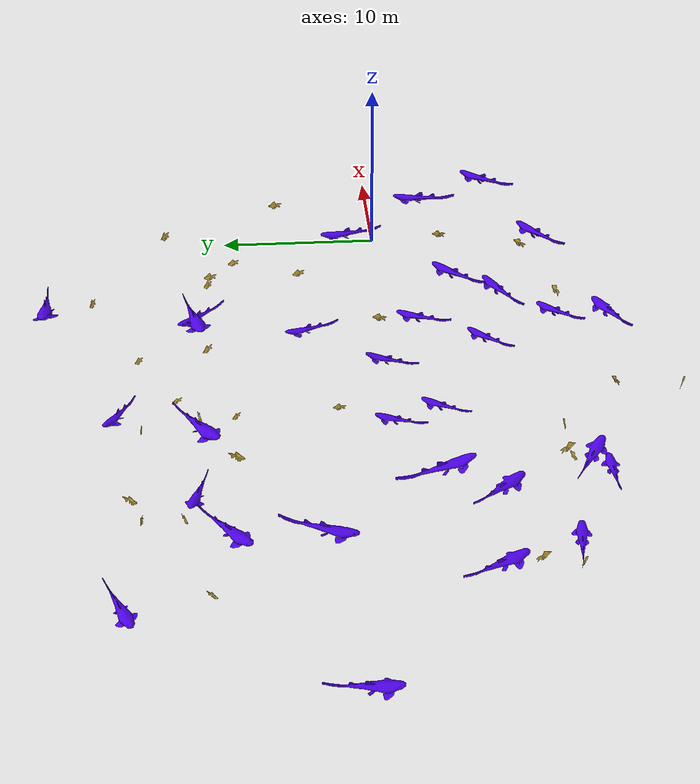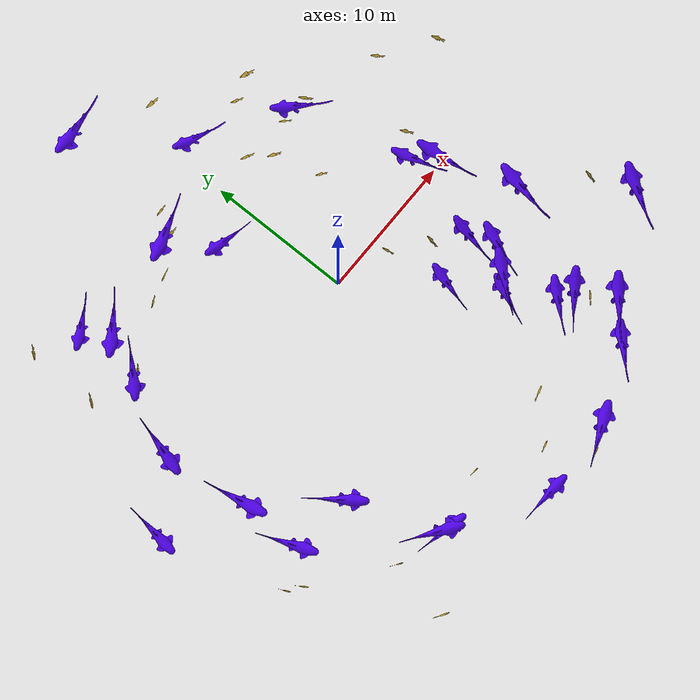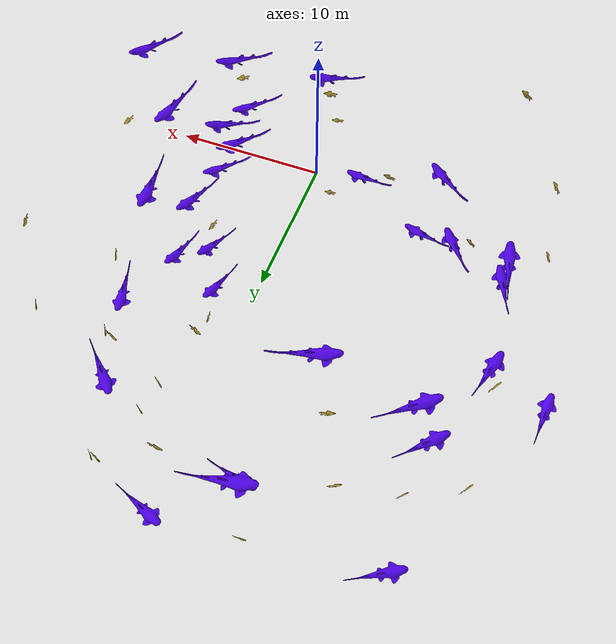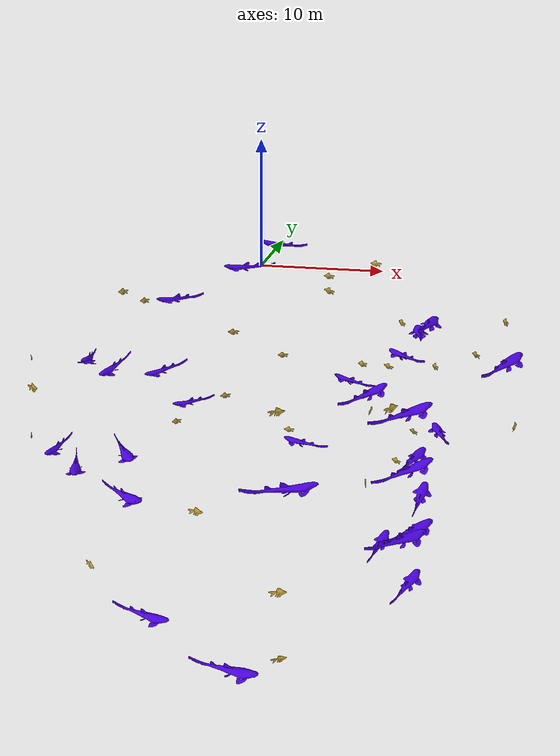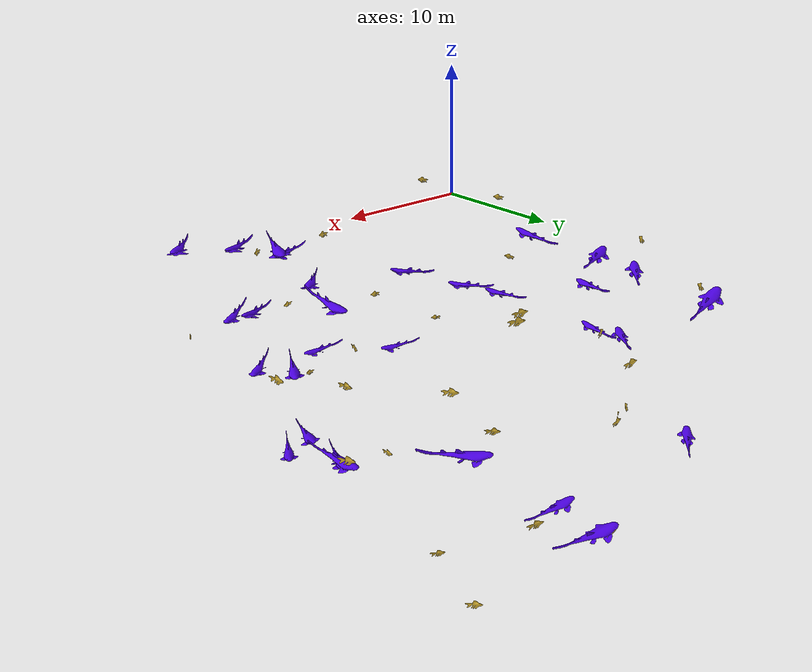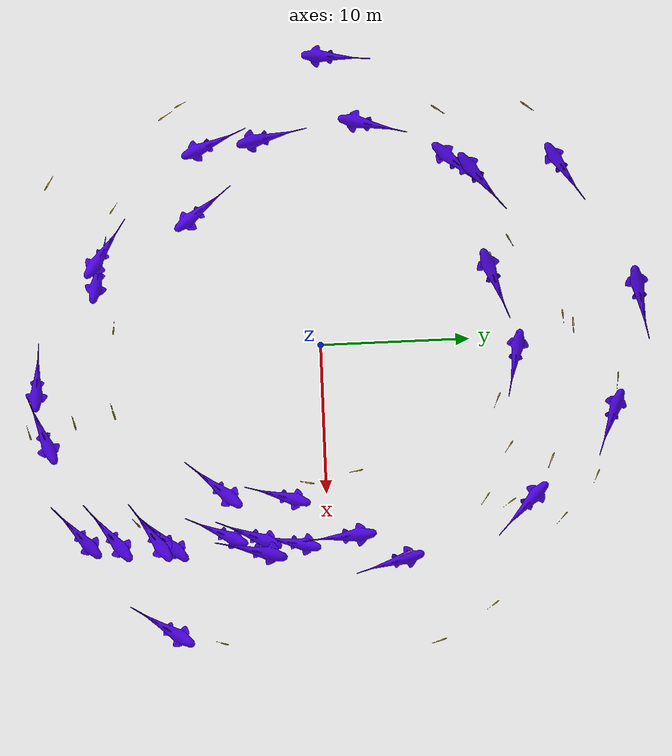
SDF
<sdf version="1.6">
 <world name="aquaculture_world">
  <plugin filename="libusv_gazebo_wind_plugin.so" name="wind">
   <wind_obj>
    <name>wamv</name>
    <link_name>wamv/base_link</link_name>
    <coeff_vector>.5 .5 .33</coeff_vector>
   </wind_obj>
   <wind_direction>270</wind_direction>
   <wind_mean_velocity>0</wind_mean_velocity>
   <var_wind_gain_constants>0</var_wind_gain_constants>
   <var_wind_time_constants>2</var_wind_time_constants>
   <update_rate>10</update_rate>
   <topic_wind_speed>/vrx/debug/wind/speed</topic_wind_speed>
   <topic_wind_direction>/vrx/debug/wind/direction</topic_wind_direction>
  </plugin>
  <plugin name="underwater_current_plugin" filename="libuuv_underwater_current_ros_plugin.so">
   <namespace>hydrodynamics</namespace>
   <constant_current>
    <topic>current_velocity</topic>
    <velocity><mean>0</mean><min>0</min><max>5</max><mu>0.0</mu><noiseAmp>0.0</noiseAmp></velocity>
    <horizontal_angle>
     <mean>0</mean>
     <min>-3.141592653589793238</min>
     <max>3.141592653589793238</max>
     <mu>0.0</mu>
     <noiseAmp>0.0</noiseAmp>
    </horizontal_angle>
    <vertical_angle>
     <mean>0</mean>
     <min>-3.141592653589793238</min>
     <max>3.141592653589793238</max>
     <mu>0.0</mu>
     <noiseAmp>0.0</noiseAmp>
    </vertical_angle>
   </constant_current>
  </plugin>
  <plugin name="sc_interface" filename="libuuv_sc_ros_interface_plugin.so"/>
  <include>
   <name>goldenfish0</name>
   <uri>model://goldenfish</uri>
   <pose>5.45 -21.32 -16.12 7.69 6.28 0.27</pose>
  </include>
  <include>
   <name>goldenfish1</name>
   <uri>model://goldenfish</uri>
   <pose>18.85 11.34 -10.60 7.74 0.01 2.17</pose>
  </include>
  <include>
   <name>goldenfish2</name>
   <uri>model://goldenfish</uri>
   <pose>8.55 15.37 -3.09 1.63 0.02 2.75</pose>
  </include>
  <include>
   <name>goldenfish3</name>
   <uri>model://goldenfish</uri>
   <pose>11.66 -13.34 -6.02 7.80 6.18 0.72</pose>
  </include>
  <include>
   <name>goldenfish4</name>
   <uri>model://goldenfish</uri>
   <pose>4.35 11.96 -5.19 7.76 6.17 2.73</pose>
  </include>
  <include>
   <name>goldenfish5</name>
   <uri>model://goldenfish</uri>
   <pose>10.32 19.43 -15.51 7.79 6.15 2.72</pose>
  </include>
  <include>
   <name>goldenfish6</name>
   <uri>model://goldenfish</uri>
   <pose>-1.93 -14.79 -14.89 7.78 6.27 6.17</pose>
  </include>
  <include>
   <name>goldenfish7</name>
   <uri>model://goldenfish</uri>
   <pose>-6.96 14.09 -18.23 7.85 0.01 3.64</pose>
  </include>
  <include>
   <name>goldenfish8</name>
   <uri>model://goldenfish</uri>
   <pose>7.87 13.06 -13.01 1.58 0.14 2.52</pose>
  </include>
  <include>
   <name>goldenfish9</name>
   <uri>model://goldenfish</uri>
   <pose>3.30 20.39 -5.91 7.85 6.25 3.03</pose>
  </include>
  <include>
   <name>goldenfish10</name>
   <uri>model://goldenfish</uri>
   <pose>11.98 11.73 -23.07 1.58 6.26 2.52</pose>
  </include>
  <include>
   <name>goldenfish11</name>
   <uri>model://goldenfish</uri>
   <pose>-15.83 8.79 -5.50 1.63 6.18 4.11</pose>
  </include>
  <include>
   <name>goldenfish12</name>
   <uri>model://goldenfish</uri>
   <pose>-10.71 -14.76 -20.79 7.80 0.09 5.65</pose>
  </include>
  <include>
   <name>goldenfish13</name>
   <uri>model://goldenfish</uri>
   <pose>-11.99 11.97 -20.83 1.68 6.21 3.95</pose>
  </include>
  <include>
   <name>goldenfish14</name>
   <uri>model://goldenfish</uri>
   <pose>-5.50 12.29 -10.19 7.73 6.25 3.45</pose>
  </include>
  <include>
   <name>goldenfish15</name>
   <uri>model://goldenfish</uri>
   <pose>-11.86 -18.15 -4.47 1.62 6.17 5.72</pose>
  </include>
  <include>
   <name>goldenfish16</name>
   <uri>model://goldenfish</uri>
   <pose>-16.00 15.10 -8.25 1.63 6.19 4.07</pose>
  </include>
  <include>
   <name>goldenfish17</name>
   <uri>model://goldenfish</uri>
   <pose>4.03 -14.55 -6.44 1.66 6.20 0.27</pose>
  </include>
  <include>
   <name>goldenfish18</name>
   <uri>model://goldenfish</uri>
   <pose>5.08 -18.64 -23.98 1.65 6.10 0.27</pose>
  </include>
  <include>
   <name>goldenfish19</name>
   <uri>model://goldenfish</uri>
   <pose>11.57 12.66 -8.24 7.80 6.22 2.17</pose>
  </include>
  <include>
   <name>goldenfish20</name>
   <uri>model://goldenfish</uri>
   <pose>-1.19 17.42 -14.28 7.79 0.05 3.22</pose>
  </include>
  <include>
   <name>goldenfish21</name>
   <uri>model://goldenfish</uri>
   <pose>20.55 -7.86 -9.11 7.79 0.10 1.25</pose>
  </include>
  <include>
   <name>goldenfish22</name>
   <uri>model://goldenfish</uri>
   <pose>-0.63 18.87 -24.02 1.66 0.01 3.16</pose>
  </include>
  <include>
   <name>goldenfish23</name>
   <uri>model://goldenfish</uri>
   <pose>13.57 17.32 -22.18 7.71 0.01 2.37</pose>
  </include>
  <include>
   <name>goldenfish24</name>
   <uri>model://goldenfish</uri>
   <pose>9.70 -1.43 -11.64 1.66 0.01 1.38</pose>
  </include>
  <include>
   <name>goldenfish25</name>
   <uri>model://goldenfish</uri>
   <pose>9.42 2.15 -20.66 1.60 6.28 1.74</pose>
  </include>
  <include>
   <name>goldenfish26</name>
   <uri>model://goldenfish</uri>
   <pose>20.76 7.29 -5.89 7.85 0.02 1.88</pose>
  </include>
  <include>
   <name>goldenfish27</name>
   <uri>model://goldenfish</uri>
   <pose>-16.21 -10.03 -5.61 7.84 6.24 5.27</pose>
  </include>
  <include>
   <name>goldenfish28</name>
   <uri>model://goldenfish</uri>
   <pose>-17.52 -9.16 -12.91 7.81 6.20 5.17</pose>
  </include>
  <include>
   <name>goldenfish29</name>
   <uri>model://goldenfish</uri>
   <pose>14.93 5.34 -9.85 1.58 0.11 1.99</pose>
  </include>
  <include>
   <name>catfish0</name>
   <uri>model://catfish</uri>
   <pose>11.10 -3.69 -24.24 6.26 6.24 1.29</pose>
  </include>
  <include><name>catfish1</name><uri>model://catfish</uri><pose>9.41 -7.85 -8.19 6.28 6.22 0.87</pose></include>
  <include>
   <name>catfish2</name>
   <uri>model://catfish</uri>
   <pose>-6.24 -16.27 -24.18 6.23 0.02 6.04</pose>
  </include>
  <include>
   <name>catfish3</name>
   <uri>model://catfish</uri>
   <pose>1.98 14.37 -23.89 6.24 6.25 2.93</pose>
  </include>
  <include>
   <name>catfish4</name>
   <uri>model://catfish</uri>
   <pose>-14.67 -2.89 -8.67 6.19 6.14 4.92</pose>
  </include>
  <include>
   <name>catfish5</name>
   <uri>model://catfish</uri>
   <pose>12.61 -18.03 -14.03 0.02 0.06 0.73</pose>
  </include>
  <include>
   <name>catfish6</name>
   <uri>model://catfish</uri>
   <pose>13.41 -12.05 -17.05 0.05 6.28 0.81</pose>
  </include>
  <include>
   <name>catfish7</name>
   <uri>model://catfish</uri>
   <pose>-3.64 12.09 -3.76 0.07 0.02 3.48</pose>
  </include>
  <include>
   <name>catfish8</name>
   <uri>model://catfish</uri>
   <pose>-10.03 -7.92 -14.60 0.14 0.02 5.35</pose>
  </include>
  <include>
   <name>catfish9</name>
   <uri>model://catfish</uri>
   <pose>1.58 -21.17 -23.75 6.26 0.04 6.19</pose>
  </include>
  <include>
   <name>catfish10</name>
   <uri>model://catfish</uri>
   <pose>13.29 0.70 -5.95 6.26 0.09 1.64</pose>
  </include>
  <include>
   <name>catfish11</name>
   <uri>model://catfish</uri>
   <pose>-7.42 -15.05 -14.41 0.09 6.21 5.66</pose>
  </include>
  <include>
   <name>catfish12</name>
   <uri>model://catfish</uri>
   <pose>18.72 -11.55 -3.72 6.27 6.23 0.99</pose>
  </include>
  <include>
   <name>catfish13</name>
   <uri>model://catfish</uri>
   <pose>6.46 20.79 -18.77 0.10 6.21 2.78</pose>
  </include>
  <include>
   <name>catfish14</name>
   <uri>model://catfish</uri>
   <pose>-2.03 21.91 -3.59 0.07 6.21 3.31</pose>
  </include>
  <include>
   <name>catfish15</name>
   <uri>model://catfish</uri>
   <pose>5.24 -19.90 -9.94 6.14 6.28 0.36</pose>
  </include>
  <include>
   <name>catfish16</name>
   <uri>model://catfish</uri>
   <pose>12.84 -12.56 -11.79 6.27 6.12 0.62</pose>
  </include>
  <include>
   <name>catfish17</name>
   <uri>model://catfish</uri>
   <pose>12.36 -15.17 -6.21 0.04 6.21 0.68</pose>
  </include>
  <include>
   <name>catfish18</name>
   <uri>model://catfish</uri>
   <pose>-14.85 -7.10 -16.88 0.02 6.26 5.10</pose>
  </include>
  <include>
   <name>catfish19</name>
   <uri>model://catfish</uri>
   <pose>-11.88 18.51 -21.81 0.10 0.07 3.70</pose>
  </include>
  <include>
   <name>catfish20</name>
   <uri>model://catfish</uri>
   <pose>-15.39 4.47 -12.20 6.20 0.13 4.46</pose>
  </include>
  <include>
   <name>catfish21</name>
   <uri>model://catfish</uri>
   <pose>-10.80 11.61 -7.28 0.12 6.27 3.81</pose>
  </include>
  <include>
   <name>catfish22</name>
   <uri>model://catfish</uri>
   <pose>13.68 -5.38 -3.20 0.06 0.08 1.32</pose>
  </include>
  <include>
   <name>catfish23</name>
   <uri>model://catfish</uri>
   <pose>14.27 -2.97 -19.54 0.05 6.15 1.37</pose>
  </include>
  <include>
   <name>catfish24</name>
   <uri>model://catfish</uri>
   <pose>13.33 -5.75 -14.46 6.27 0.01 1.17</pose>
  </include>
  <include>
   <name>catfish25</name>
   <uri>model://catfish</uri>
   <pose>13.66 -8.34 -24.71 6.24 6.22 1.14</pose>
  </include>
  <include>
   <name>catfish26</name>
   <uri>model://catfish</uri>
   <pose>12.25 13.81 -12.79 0.03 0.04 2.36</pose>
  </include>
  <include>
   <name>catfish27</name>
   <uri>model://catfish</uri>
   <pose>-20.98 2.00 -20.26 6.28 6.28 4.62</pose>
  </include>
  <include>
   <name>catfish28</name>
   <uri>model://catfish</uri>
   <pose>15.92 4.30 -16.70 0.07 0.07 1.82</pose>
  </include>
  <include>
   <name>catfish29</name>
   <uri>model://catfish</uri>
   <pose>-12.24 10.49 -14.67 0.08 0.10 3.97</pose>
  </include>
 </world>
</sdf>

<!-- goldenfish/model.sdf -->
<sdf version="1.6">
  <model name="goldenfishmodel">
    <pose>0 0 -40 0 0 0</pose>
    <static>true</static>

    <link name="goldenfishlink">
      <visual name="visual">
        <geometry>
          <mesh>
            <uri>model://goldenfish/meshes/Golden_Fish_DAE.DAE</uri>
            <scale>0.6 0.6 0.6</scale>
          </mesh>
        </geometry>
        <material>
          <script>
            <name>Fish/Golden</name>
            <uri>model://goldenfish/materials/textures</uri>
            <uri>model://goldenfish/materials/scripts</uri>
          </script>
        </material>
      </visual>
      <collision name="collision">
        <geometry>
          <mesh>
            <uri>model://goldenfish/meshes/Golden_Fish_DAE.DAE</uri>
            <scale>0.6 0.6 0.6</scale>
          </mesh>
        </geometry>
      </collision>
    </link>
  </model>
</sdf>

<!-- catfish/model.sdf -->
<sdf version="1.6">
  <model name="catfishmodel">
    <pose>0 0 -40 0 0 0</pose>
    <static>true</static>

    <link name="catfishlink">
      <visual name="visual">
        <geometry>
          <mesh>
            <uri>model://catfish/meshes/catfish.stl</uri>
            <scale>0.01 0.01 0.01</scale>
          </mesh>
        </geometry>
        <material>
          <ambient>0.2 0 0.75 1</ambient>
          <diffuse>0.3 0 0.9 1</diffuse>
          <specular>0.3 0.3 0.3 64</specular>
          <emissive>0.2 0.2 0.2 1</emissive>
        </material>
      </visual>
      <collision name="collision">
        <geometry>
          <mesh>
            <uri>model://catfish/meshes/catfish.stl</uri>
            <scale>0.01 0.01 0.01</scale>
          </mesh>
        </geometry>
      </collision>
    </link>
  </model>
</sdf>
